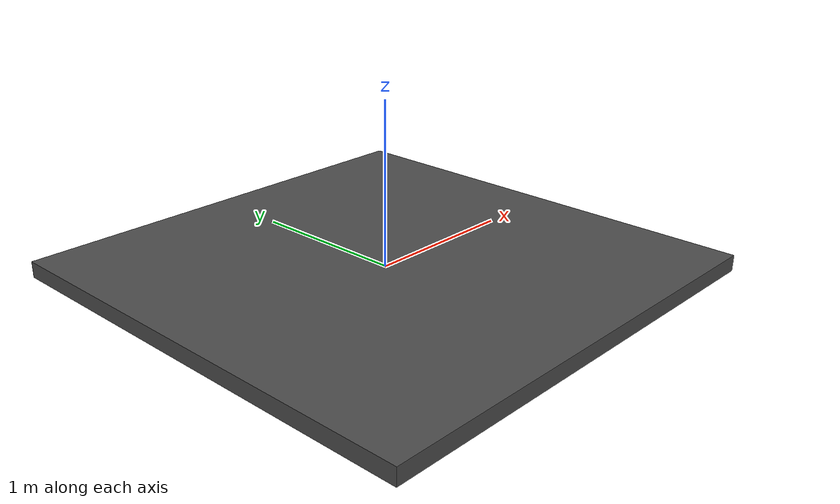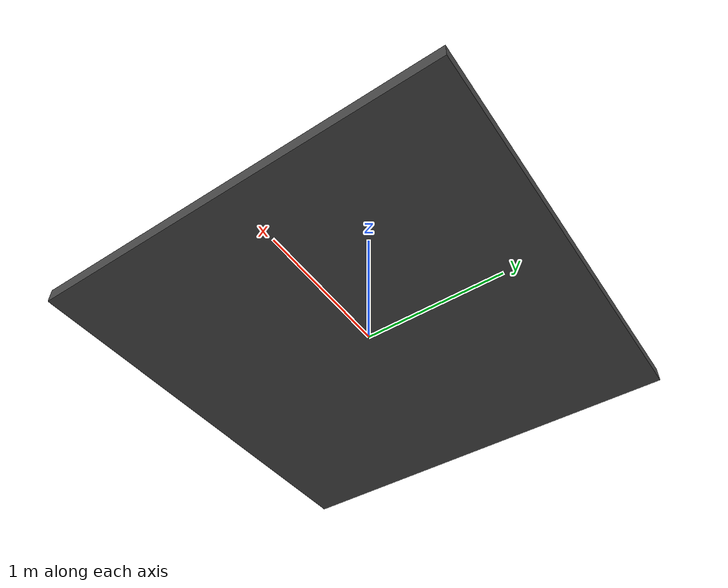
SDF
<?xml version="1.0" ?>
<sdf version="1.5">
  <model name="mur2">
    <static>true</static>
    <link name="link">
      <collision name="collision">
        <geometry>
          <box>
            <size>2.9 2.9 0.1</size>
          </box>
        </geometry>
      </collision>
      <visual name="visual">
        <cast_shadows>false</cast_shadows>
        <geometry>
          <box>
            <size>2.9 2.9 0.1</size>
          </box>
        </geometry>
        <material>
          <script>
            <uri>model://asphalt_plane/materials/scripts</uri>
            <uri>model://asphalt_plane/materials/textures</uri>
            <name>vrc/asphalt</name>
          </script>
        </material>
      </visual>
    </link>
  </model>
</sdf>
